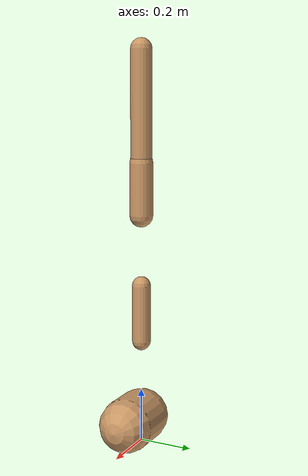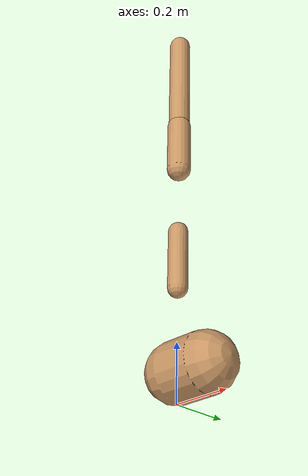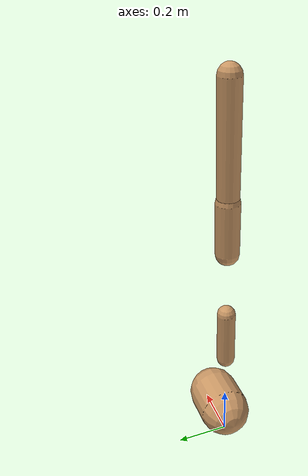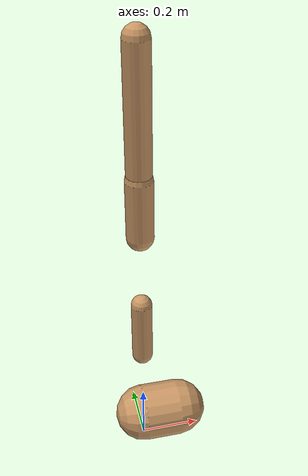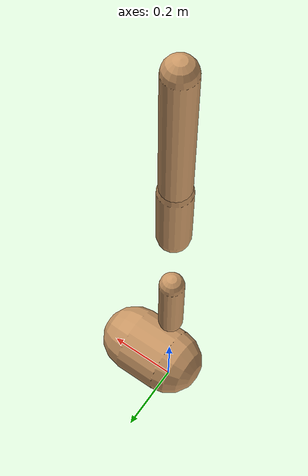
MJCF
<mujoco model="walker2d">
  <compiler angle="degree" coordinate="global" inertiafromgeom="true" />
  <default>
    <joint armature="0.01" damping=".1" limited="true" />
    <geom conaffinity="0" condim="3" contype="1" density="1000" friction="0.8 .1 .1" rgba="0.8 0.6 .4 1" />
  </default>
  <option integrator="RK4" timestep="0.002" />
  <worldbody>

    <body name="torso" pos="0 0 -0.550244865600293">
      <joint armature="0" axis="1 0 0" damping="0" limited="false" name="ignorex" pos="0 0 0" stiffness="0" type="slide" />
      <joint armature="0" axis="0 0 1" damping="0" limited="false" name="ignorez" pos="0 0 0" ref="1.25" stiffness="0" type="slide" />
      <joint armature="0" axis="0 1 0" damping="0" limited="false" name="ignorey" pos="0 0 0" stiffness="0" type="hinge" />
      <geom fromto="0 0 1.45 0 0 1.05" name="torso_geom" size="0.03910621241842914" type="capsule" />
      <body name="thigh">
        <joint axis="0 -1 0" name="thigh_joint" pos="0 0 1.05" range="-150 0" type="hinge" />
        <geom fromto="0.0 0.0 1.05 0.0 0.0 0.8606423047580335" name="thigh_geom" size="0.04287406877227369" type="capsule" />
        <body name="leg" pos="0.0 0.0 0.2606423047580335">
          <joint axis="0 -1 0" name="leg_joint" pos="0 0 0.6" range="-150 0" type="hinge" />
          <geom fromto="0.0 0.0 0.6 0.0 0.0 0.3896025608422594" name="leg_geom" size="0.03429925501781895" type="capsule" />
          <body name="foot" pos="0.0 0.0 0.28960256084225944">
            <joint axis="0 -1 0" name="foot_joint" pos="0 0 0.1" range="-45 45" type="hinge" />
            <geom fromto="0.0 0.0 0.1 0.12361741647946266 0.0 0.1" name="foot_geom" size="0.09987857452774739" type="capsule" />
          </body>
        </body>
      </body>

      <body name="thigh_left">
        <joint axis="0 -1 0" name="thigh_left_joint" pos="0 0 1.05" range="-150 0" type="hinge" />
        <geom fromto="0.0 0.0 1.05 0.0 0.0 0.8606423047580335" name="thigh_left_geom" rgba=".7 .3 .6 1" size="0.04287406877227369" type="capsule" />
        <body name="leg_left" pos="0.0 0.0 0.2606423047580335">
          <joint axis="0 -1 0" name="leg_left_joint" pos="0 0 0.6" range="-150 0" type="hinge" />
          <geom fromto="0.0 0.0 0.6 0.0 0.0 0.3896025608422594" name="leg_left_geom" rgba=".7 .3 .6 1" size="0.03429925501781895" type="capsule" />
          <body name="foot_left" pos="0.0 0.0 0.28960256084225944">
            <joint axis="0 -1 0" name="foot_left_joint" pos="0 0 0.1" range="-45 45" type="hinge" />
            <geom fromto="0.0 0.0 0.1 0.12361741647946266 0.0 0.1" name="foot_left_geom" rgba=".7 .3 .6 1" size="0.09987857452774739" type="capsule" />
          </body>
        </body>
      </body>
    </body>
  </worldbody>
  <actuator>

    <motor ctrllimited="true" ctrlrange="-1.0 1.0" gear="100" joint="thigh_joint" />
    <motor ctrllimited="true" ctrlrange="-1.0 1.0" gear="100" joint="leg_joint" />
    <motor ctrllimited="true" ctrlrange="-1.0 1.0" gear="100" joint="foot_joint" />
    <motor ctrllimited="true" ctrlrange="-1.0 1.0" gear="100" joint="thigh_left_joint" />
    <motor ctrllimited="true" ctrlrange="-1.0 1.0" gear="100" joint="leg_left_joint" />
    <motor ctrllimited="true" ctrlrange="-1.0 1.0" gear="100" joint="foot_left_joint" />

  </actuator>
</mujoco>
